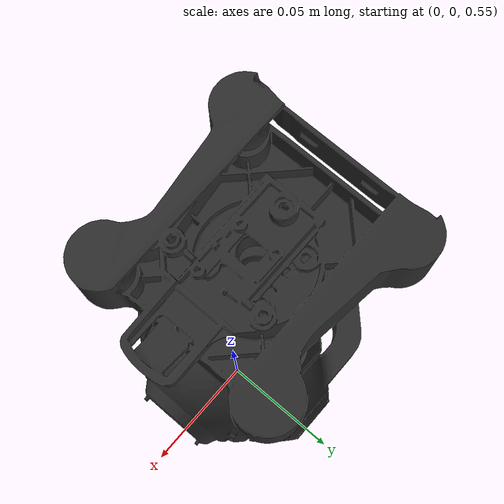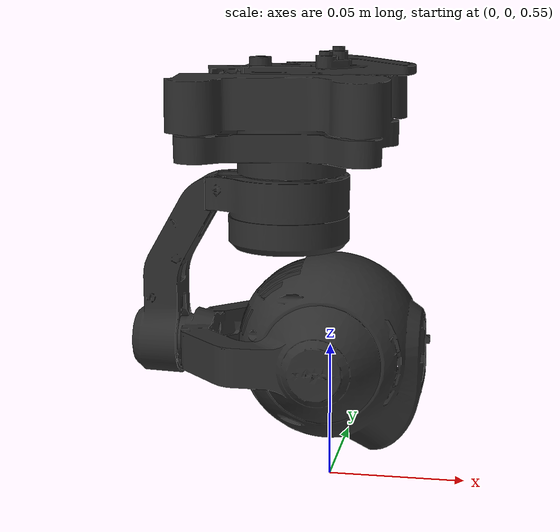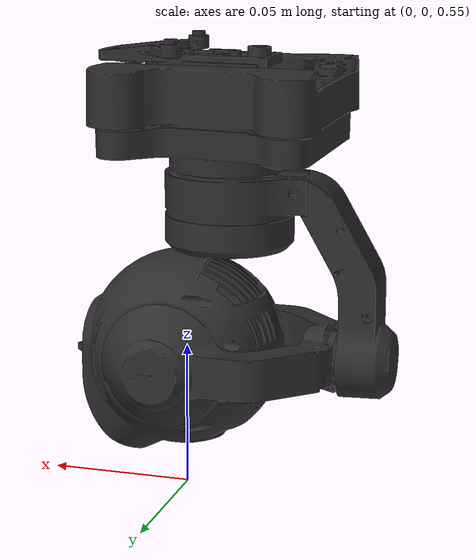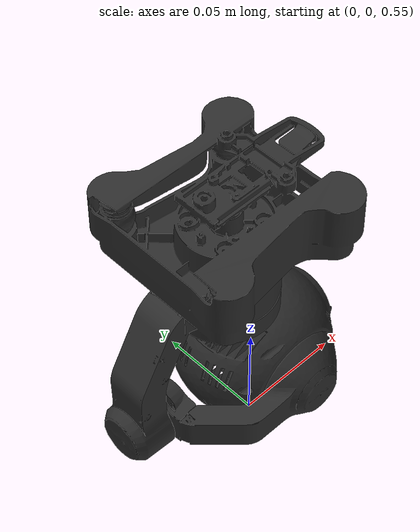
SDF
<?xml version='1.0'?>
<sdf version="1.7">
  <world name="gimbal_world">

    <physics name="1ms" type="ode">
      <max_step_size>0.001</max_step_size>
      <real_time_factor>1.0</real_time_factor>
    </physics>

    <plugin name="gazebo_ros_init" filename="libgazebo_ros_init.so"/>

    <gravity>0 0 -9.8</gravity>

    <scene>
      <ambient>0.6 0.6 0.6 1</ambient>
      <background>0.68 0.83 1.0 1</background>
      <shadows>true</shadows>
    </scene>

    <light type="directional" name="sun">
      <cast_shadows>true</cast_shadows>
      <pose>0 0 10 0 0 0</pose>
      <diffuse>0.9 0.9 0.9 1</diffuse>
      <specular>0.3 0.3 0.3 1</specular>
      <direction>-0.4 0.2 -0.9</direction>
    </light>

    <model name="ground_plane">
      <static>true</static>
      <link name="link">
        <collision name="collision">
          <geometry>
            <plane><normal>0 0 1</normal><size>50 50</size></plane>
          </geometry>
        </collision>
        <visual name="visual">
          <geometry>
            <plane><normal>0 0 1</normal><size>50 50</size></plane>
          </geometry>
          <material>
            <ambient>0.13 0.38 0.08 1</ambient>
            <diffuse>0.17 0.44 0.10 1</diffuse>
            <specular>0.01 0.01 0.01 1</specular>
          </material>
        </visual>
      </link>
    </model>

    <include>
      <uri>model://gimbal_classic</uri>
      <pose>0 0 0.6 0 0 0</pose>
    </include>

  </world>
</sdf>

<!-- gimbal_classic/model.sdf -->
<sdf version="1.7">
  <model name="gimbal_classic">
    <self_collide>false</self_collide>
    <static>false</static>

    <!-- Pin the gimbal mount to the world so it acts like a fixed camera
         stand (standalone use; PX4 instead attaches this to the x500 drone). -->
    <joint name='world_fix' type='fixed'>
      <parent>world</parent>
      <child>cgo3_mount_link</child>
    </joint>

    <!-- Gimbal mount point -->
    <link name="cgo3_mount_link">
      <inertial>
        <pose>-0.02552 0 -0.08136 0 0 0</pose>
        <mass>0.1</mass>
        <inertia>
          <ixx>0.001</ixx>
          <ixy>0</ixy>
          <ixz>0</ixz>
          <iyy>0.001</iyy>
          <iyz>0</iyz>
          <izz>0.001</izz>
        </inertia>
      </inertial>
      <visual name="cgo3_mount_visual">
        <geometry>
          <mesh>
            <scale>0.001 0.001 0.001</scale>
            <uri>model://gimbal/meshes/cgo3_mount_remeshed_v1.stl</uri>
          </mesh>
        </geometry>
        <material>
          <ambient>.175 .175 .175 1.0</ambient>
          <diffuse>.175 .175 .175 1.0</diffuse>
          <specular>.175 .175 .175 1.0</specular>
        </material>
      </visual>
    </link>

    <!-- Gimbal vertical arm -->
    <link name="cgo3_vertical_arm_link">
      <inertial>
        <pose>0 0 -0.1283 0 0 0</pose>
        <mass>0.1</mass>
        <inertia>
          <ixx>0.001</ixx>
          <ixy>0</ixy>
          <ixz>0</ixz>
          <iyy>0.001</iyy>
          <iyz>0</iyz>
          <izz>0.001</izz>
        </inertia>
      </inertial>
      <visual name='cgo3_vertical_arm_visual'>
        <geometry>
          <mesh>
            <scale>0.001 0.001 0.001</scale>
            <uri>model://gimbal/meshes/cgo3_vertical_arm_remeshed_v1.stl</uri>
          </mesh>
        </geometry>
        <material>
          <ambient>.175 .175 .175 1.0</ambient>
          <diffuse>.175 .175 .175 1.0</diffuse>
          <specular>.175 .175 .175 1.0</specular>
        </material>
      </visual>
    </link>

    <!-- Yaw joint -->
    <joint name='cgo3_vertical_arm_joint' type='revolute'>
      <child>cgo3_vertical_arm_link</child>
      <parent>cgo3_mount_link</parent>
      <pose>-0.02552 0 0 0 0 0</pose>
      <axis>
        <xyz>0 0 -1</xyz>
        <limit>
          <lower>-1e+16</lower>
          <upper>1e+16</upper>
          <effort>100</effort>
          <velocity>-1</velocity>
        </limit>
        <dynamics>
          <damping>0.1</damping>
        </dynamics>
        <use_parent_model_frame>false</use_parent_model_frame>
      </axis>
      <physics>
        <ode>
          <implicit_spring_damper>1</implicit_spring_damper>
          <limit>
            <cfm>0.1</cfm>
            <erp>0.2</erp>
          </limit>
        </ode>
      </physics>
    </joint>

    <!-- Gimbal horizontal arm -->
    <link name="cgo3_horizontal_arm_link">
      <inertial>
        <pose>-0.0213 0 -0.162 0 0 0</pose>
        <mass>0.1</mass>
        <inertia>
          <ixx>0.001</ixx>
          <ixy>0</ixy>
          <ixz>0</ixz>
          <iyy>0.001</iyy>
          <iyz>0</iyz>
          <izz>0.001</izz>
        </inertia>
      </inertial>
      <visual name='cgo3_horizontal_arm_visual'>
        <geometry>
          <mesh>
            <scale>0.001 0.001 0.001</scale>
            <uri>model://gimbal/meshes/cgo3_horizontal_arm_remeshed_v1.stl</uri>
          </mesh>
        </geometry>
        <material>
          <ambient>.175 .175 .175 1.0</ambient>
          <diffuse>.175 .175 .175 1.0</diffuse>
          <specular>.175 .175 .175 1.0</specular>
        </material>
      </visual>
    </link>

    <!-- Roll joint -->
    <joint name='cgo3_horizontal_arm_joint' type='revolute'>
      <child>cgo3_horizontal_arm_link</child>
      <parent>cgo3_vertical_arm_link</parent>
      <pose>0 0 -0.1619 0 0 0</pose>
      <axis>
        <xyz>-1 0 0</xyz>
        <limit>
          <lower>-0.785398</lower>
          <upper>0.785398</upper>
          <effort>100</effort>
          <velocity>-1</velocity>
        </limit>
        <dynamics>
          <damping>0.1</damping>
        </dynamics>
        <use_parent_model_frame>false</use_parent_model_frame>
      </axis>
      <physics>
        <ode>
          <implicit_spring_damper>1</implicit_spring_damper>
          <limit>
            <cfm>0.1</cfm>
            <erp>0.2</erp>
          </limit>
        </ode>
      </physics>
    </joint>

    <!-- Camera -->
    <link name="camera_link">
      <inertial>
        <pose>-0.0412 0 -0.162 0 0 0</pose>
        <mass>0.1</mass>
        <inertia>
          <ixx>0.001</ixx>
          <ixy>0</ixy>
          <ixz>0</ixz>
          <iyy>0.001</iyy>
          <iyz>0</iyz>
          <izz>0.001</izz>
        </inertia>
      </inertial>
      <collision name='cgo3_camera_collision'>
        <pose>-0.0412 0 -0.162 0 0 0</pose>
        <geometry>
          <sphere>
            <radius>0.035</radius>
          </sphere>
        </geometry>
        <surface>
          <friction>
            <ode>
              <mu>1</mu>
              <mu2>1</mu2>
            </ode>
          </friction>
          <contact>
            <ode>
              <kp>1e+8</kp>
              <kd>1</kd>
              <max_vel>0.01</max_vel>
              <min_depth>0.001</min_depth>
            </ode>
          </contact>
        </surface>
      </collision>
      <visual name='cgo3_camera_visual'>
        <geometry>
          <mesh>
          <scale>0.001 0.001 0.001</scale>
            <uri>model://gimbal/meshes/cgo3_camera_remeshed_v1.stl</uri>
          </mesh>
        </geometry>
        <material>
          <ambient>.175 .175 .175 1.0</ambient>
          <diffuse>.175 .175 .175 1.0</diffuse>
          <specular>.175 .175 .175 1.0</specular>
        </material>
      </visual>

      <sensor name="camera_imu" type="imu">
        <always_on>1</always_on>
        <update_rate>250</update_rate>
        <pose>-0.0412 0 -0.162 0 0 3.14</pose>
        <imu>
          <angular_velocity>
            <x><noise type="gaussian"><mean>0</mean><stddev>0.00018665</stddev><bias_mean>0</bias_mean><bias_stddev>3.8785e-05</bias_stddev></noise></x>
            <y><noise type="gaussian"><mean>0</mean><stddev>0.00018665</stddev><bias_mean>0</bias_mean><bias_stddev>3.8785e-05</bias_stddev></noise></y>
            <z><noise type="gaussian"><mean>0</mean><stddev>0.00018665</stddev><bias_mean>0</bias_mean><bias_stddev>3.8785e-05</bias_stddev></noise></z>
          </angular_velocity>
          <linear_acceleration>
            <x><noise type="gaussian"><mean>0</mean><stddev>0.00186</stddev><bias_mean>0</bias_mean><bias_stddev>0.006</bias_stddev></noise></x>
            <y><noise type="gaussian"><mean>0</mean><stddev>0.00186</stddev><bias_mean>0</bias_mean><bias_stddev>0.006</bias_stddev></noise></y>
            <z><noise type="gaussian"><mean>0</mean><stddev>0.00186</stddev><bias_mean>0</bias_mean><bias_stddev>0.006</bias_stddev></noise></z>
          </linear_acceleration>
        </imu>
        <plugin name="camera_imu_plugin" filename="libgazebo_ros_imu_sensor.so">
          <ros>
            <namespace>/gimbal</namespace>
            <remapping>~/out:=imu</remapping>
          </ros>
          <frame_name>camera_link</frame_name>
        </plugin>
      </sensor>

      <sensor name="camera" type="camera">
        <pose>-0.0412 0 -0.162 0 0 3.14</pose>
        <camera>
          <horizontal_fov>2.0</horizontal_fov>
          <image>
            <format>R8G8B8</format>
            <width>1280</width>
            <height>720</height>
          </image>
          <clip>
            <near>0.05</near>
            <far>15000</far>
          </clip>
        </camera>
        <always_on>1</always_on>
        <update_rate>30</update_rate>
        <visualize>true</visualize>
        <plugin name="gimbal_camera_plugin" filename="libgazebo_ros_camera.so">
          <ros>
            <namespace>/</namespace>
            <remapping>~/image_raw:=gimbal/camera</remapping>
            <remapping>~/camera_info:=gimbal/camera_info</remapping>
          </ros>
          <camera_name>gimbal</camera_name>
          <frame_name>camera_link</frame_name>
          <hack_baseline>0.0</hack_baseline>
        </plugin>
      </sensor>
    </link>

    <!-- Pitch joint -->
    <joint name="cgo3_camera_joint" type="revolute">
      <child>camera_link</child>
      <parent>cgo3_horizontal_arm_link</parent>
      <pose>-0.0412 0 -0.162 0 0 0</pose>
      <axis>
        <xyz>0 1 0</xyz>
        <limit>
          <lower>-2.35619</lower>
          <upper>0.7854</upper>
          <effort>100</effort>
          <velocity>-1</velocity>
        </limit>
        <dynamics>
          <damping>0.1</damping>
        </dynamics>
        <use_parent_model_frame>false</use_parent_model_frame>
      </axis>
      <physics>
        <ode>
          <implicit_spring_damper>1</implicit_spring_damper>
          <limit>
            <cfm>0.1</cfm>
            <erp>0.2</erp>
          </limit>
        </ode>
      </physics>
    </joint>

    <plugin name="gimbal_roll_controller"
            filename="libgimbal_joint_position_controller.so">
      <joint_name>cgo3_horizontal_arm_joint</joint_name>
      <topic>/gimbal/roll_cmd</topic>
      <p_gain>0.8</p_gain>
      <i_gain>0.035</i_gain>
      <d_gain>0.02</d_gain>
      <i_max>0</i_max>
      <i_min>0</i_min>
      <cmd_max>0.3</cmd_max>
      <cmd_min>-0.3</cmd_min>
    </plugin>

    <plugin name="gimbal_pitch_controller"
            filename="libgimbal_joint_position_controller.so">
      <joint_name>cgo3_camera_joint</joint_name>
      <topic>/gimbal/pitch_cmd</topic>
      <p_gain>0.8</p_gain>
      <i_gain>0.01245</i_gain>
      <d_gain>0.015</d_gain>
      <i_max>0</i_max>
      <i_min>0</i_min>
      <cmd_max>0.3</cmd_max>
      <cmd_min>-0.3</cmd_min>
    </plugin>

    <plugin name="gimbal_yaw_controller"
            filename="libgimbal_joint_position_controller.so">
      <joint_name>cgo3_vertical_arm_joint</joint_name>
      <topic>/gimbal/yaw_cmd</topic>
      <p_gain>0.3</p_gain>
      <i_gain>0.01245</i_gain>
      <d_gain>0.015</d_gain>
      <i_max>0</i_max>
      <i_min>0</i_min>
      <cmd_max>0.3</cmd_max>
      <cmd_min>-0.3</cmd_min>
    </plugin>

    <!-- Joint feedback.  Publishes sensor_msgs/JointState straight onto
         /gimbal/joint_states — under gz this needed a bridge to convert
         gz.msgs.Model and rename the topic. -->
    <plugin name="gimbal_joint_states"
            filename="libgazebo_ros_joint_state_publisher.so">
      <ros>
        <namespace>/gimbal</namespace>
        <remapping>~/out:=joint_states</remapping>
      </ros>
      <joint_name>cgo3_vertical_arm_joint</joint_name>
      <joint_name>cgo3_horizontal_arm_joint</joint_name>
      <joint_name>cgo3_camera_joint</joint_name>
      <update_rate>50</update_rate>
    </plugin>

  </model>
</sdf>
